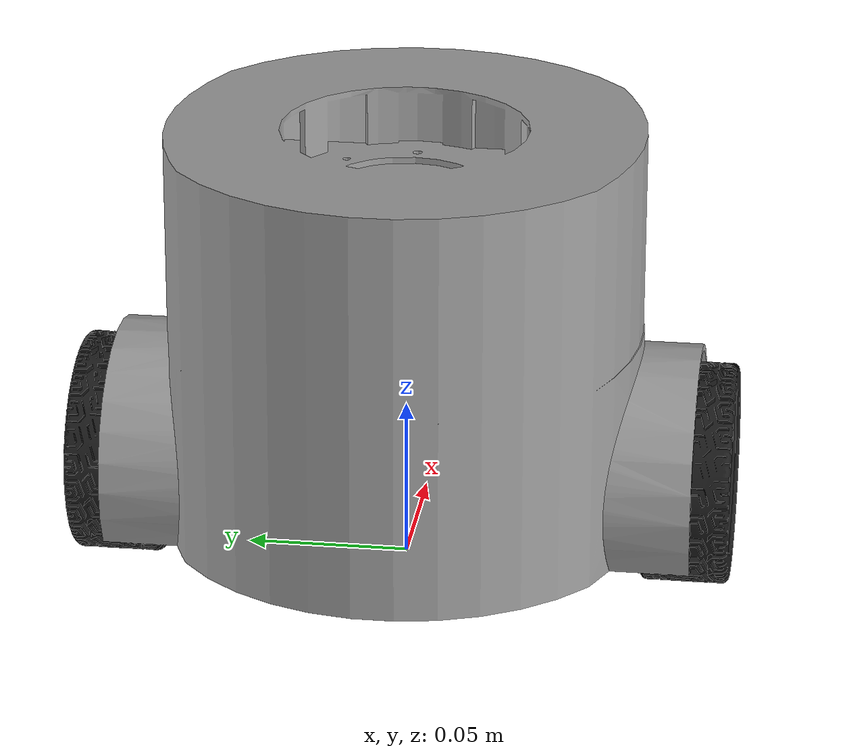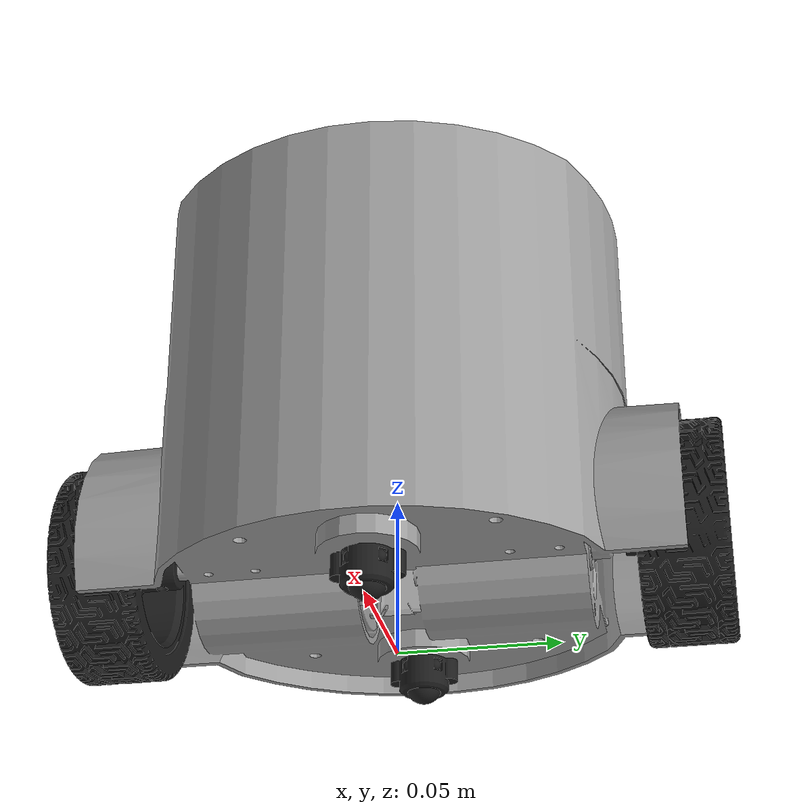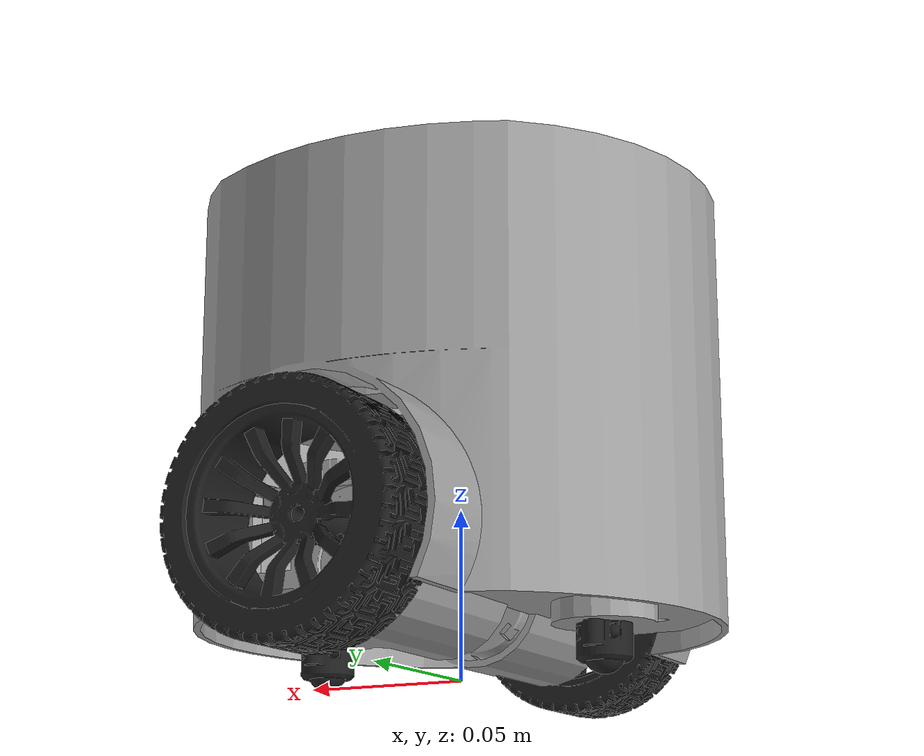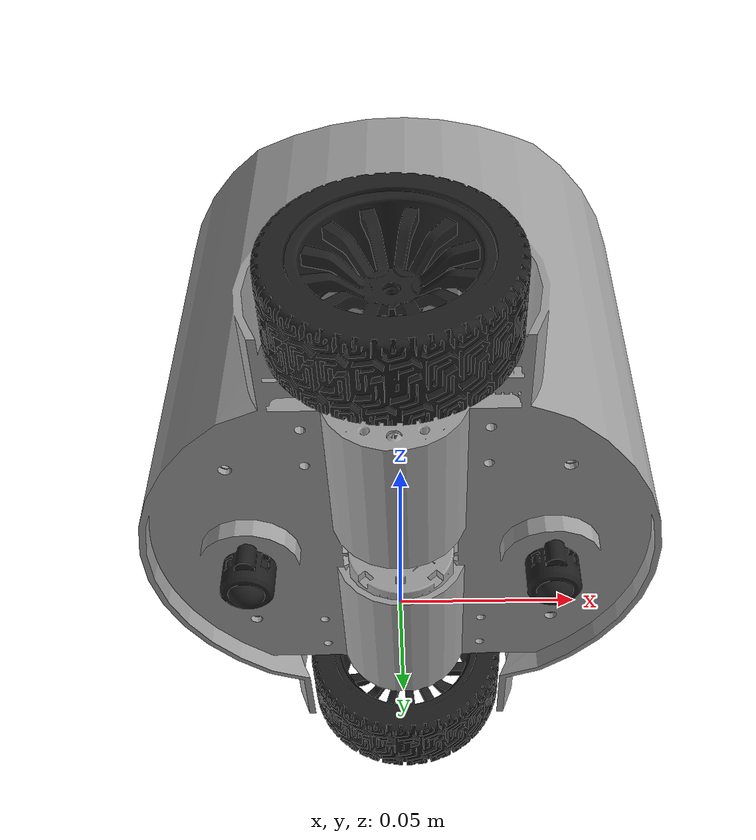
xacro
<?xml version="1.0"?>
<robot xmlns:xacro="http://www.ros.org/wiki/xacro" >

    <material name="white">
        <color rgba="1 1 1 1" />
    </material>

    <material name="orange">
        <color rgba="1 0.3 0.1 1"/>
    </material>

    <material name="blue">
        <color rgba="0.2 0.2 1 1"/>
    </material>

    <material name="black">
        <color rgba="0 0 0 1"/>
    </material>

    <material name="red">
        <color rgba="1 0 0 1"/>
    </material>

    <link name="base_footprint" />

    <joint name="base_footprint_joint" type="fixed">
        <parent link="base_footprint" />
        <child link="base_link" />
        <origin xyz="0 0 0.0325" rpy="0 0 0" />
    </joint>

    <link name="base_link">
        <inertial>
        <origin xyz="-0.0019055 0.00010735 0.052989" rpy="0 0 0" />
        <mass value="0.64078" />
        <inertia ixx="0.00089929" ixy="-1.4108e-06" ixz="4.4656e-08" iyy="0.00081185" iyz="1.034e-07" izz="0.0014661" />
        </inertial>
        <visual>
        <origin xyz="0.0 0.0 0.0" rpy="0 0 0" />
        <geometry>
            <mesh filename="package://jazzy_gz/meshes/base_link.STL" />
        </geometry>
        <material name="grey">
            <color rgba="0.62745 0.62745 0.62745 1.0" />
        </material>
        </visual>
        <collision>
        <origin xyz="0.0 0.0 0.0" rpy="0 0 0" />
        <geometry>
            <mesh filename="package://jazzy_gz/meshes/base_link.STL" />
        </geometry>
        </collision>
    </link>

    <gazebo reference="base_link">
        <material>Gazebo/Orange</material>
    </gazebo>

    <link name="left_wheel_link">
        <inertial>
        <origin xyz="-5.1909E-10 -0.0015399 7.1688E-10" rpy="0 0 0" />
        <mass value="0.035174" />
        <inertia ixx="1.5237e-05" ixy="-1.7432E-15" ixz="4.8399E-10" iyy="2.5786e-05" iyz="1.1685E-13" izz="1.5237e-05" />
        </inertial>
        <visual>
        <origin xyz="0.0 0.0 0.0" rpy="0 0 0" />
        <geometry>
            <mesh filename="package://jazzy_gz/meshes/left_wheel_link.STL" />
        </geometry>
        </visual>
        <collision>
        <origin xyz="0.0 0.0 0.0" rpy="1.5708 0 0" />
        <geometry>
            <sphere radius="0.033" />
        </geometry>
        </collision>
    </link>

    <joint name="left_wheel_link_joint" type="continuous">
        <origin xyz="0 0.09 0" rpy="0 0 0" />
        <parent link="base_link" />
        <child link="left_wheel_link" />
        <axis xyz="0 1 0" />
        <limit effort="0.05" velocity="10.0"/>
    </joint>

    <gazebo reference="left_wheel_link">
        <mu1>1.5</mu1>
        <mu2>1.5</mu2>
        <kp>1000000.0</kp>
        <kd>100.0</kd>
        <material>Gazebo/Black</material>
    </gazebo>

    <link name="right_wheel_link">
        <inertial>
        <origin xyz="8.4872E-10 0.0015399 2.5455E-10" rpy="0 0 0" />
        <mass value="0.035174" />
        <inertia ixx="1.5236e-05" ixy="-7.2194E-14" ixz="-2.0178E-11" iyy="2.5786e-05" iyz="-9.2017E-14" izz="1.5237e-05" />
        </inertial>
        <visual>
        <origin xyz="0.0 0.0 0.0" rpy="0 0 0" />
        <geometry>
            <mesh filename="package://jazzy_gz/meshes/right_wheel_link.STL" />
        </geometry>
        </visual>
        <collision>
        <origin xyz="0.0 0.0 0.0" rpy="1.5708 0 0" />
        <geometry>
            <sphere radius="0.033" />
        </geometry>
        </collision>
    </link>

    <joint name="right_wheel_link_joint" type="continuous">
        <origin xyz="0 -0.09 0" rpy="0 0 0" />
        <parent link="base_link" />
        <child link="right_wheel_link" />
        <axis xyz="0 1 0" />
        <limit effort="0.05" velocity="10.0"/>
    </joint>

    <gazebo reference="right_wheel_link">
        <mu1>1.5</mu1>
        <mu2>1.5</mu2>
        <kp>1000000.0</kp>
        <kd>100.0</kd>
        <material>Gazebo/Black</material>
    </gazebo>

    <link name="front_caster_link">
        <inertial>
        <origin xyz="-2.35686364660759E-08 -5.30640420918008E-08 0.00860269" rpy="0 0 0" />
        <mass value="0.00233535" />
        <inertia ixx="6.25775e-08" ixy="-2.67819e-11" ixz="1.62405e-13" iyy="4.56804e-08" iyz="3.62663e-13" izz="7.82059e-08" />
        </inertial>
        <visual>
        <geometry><mesh filename="package://jazzy_gz/meshes/front_caster_link.STL" /></geometry>
        </visual>
        <collision>
        <origin xyz="0 0 0.009" rpy="0 0 0" />
        <geometry><sphere radius="0.009" /></geometry>
        </collision>
    </link>

    <joint name="front_caster_link_joint" type="fixed">
        <origin xyz="0.045 0 -0.033" rpy="0 0 0" />
        <parent link="base_link" />
        <child link="front_caster_link" />
    </joint>

    <gazebo reference="front_caster_link">
        <material>Gazebo/Black</material>
        <mu1 value="0.0"/>
        <mu2 value="0.0"/>
    </gazebo>

    <link name="back_caster_link">
        <inertial>
        <origin xyz="-2.3569E-08 -5.3064E-08 0.0086027" rpy="0 0 0" />
        <mass value="0.0023354" />
        <inertia ixx="6.2578e-08" ixy="-2.6782e-11" ixz="1.624e-13" iyy="4.568e-08" iyz="3.6266e-13" izz="7.8206e-08" />
        </inertial>
        <visual>
        <geometry><mesh filename="package://jazzy_gz/meshes/back_caster_link.STL" /></geometry>
        </visual>
        <collision>
        <origin xyz="0 0 0.009" rpy="0 0 0" />
        <geometry><sphere radius="0.009" /></geometry>
        </collision>
    </link>

    <joint name="back_caster_link_joint" type="fixed">
        <origin xyz="-0.045 0 -0.033" rpy="0 0 0" />
        <parent link="base_link" />
        <child link="back_caster_link" />
    </joint>

    <gazebo reference="back_caster_link">
        <material>Gazebo/Black</material>
        <mu1 value="0.0"/>
        <mu2 value="0.0"/>
    </gazebo>

</robot>
